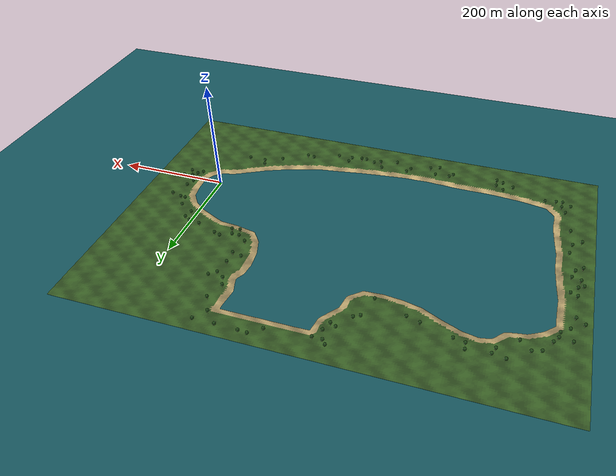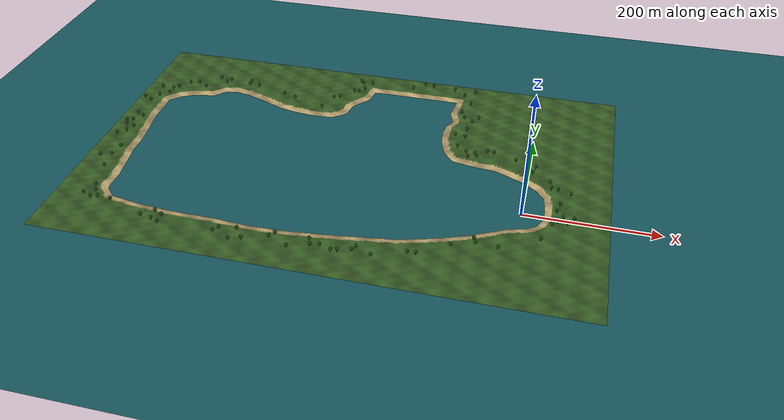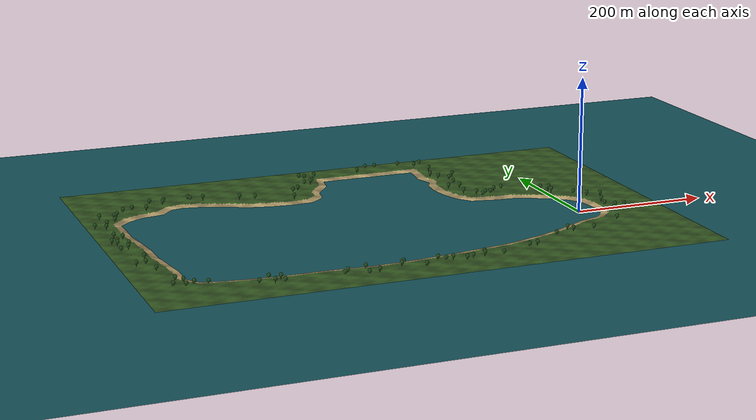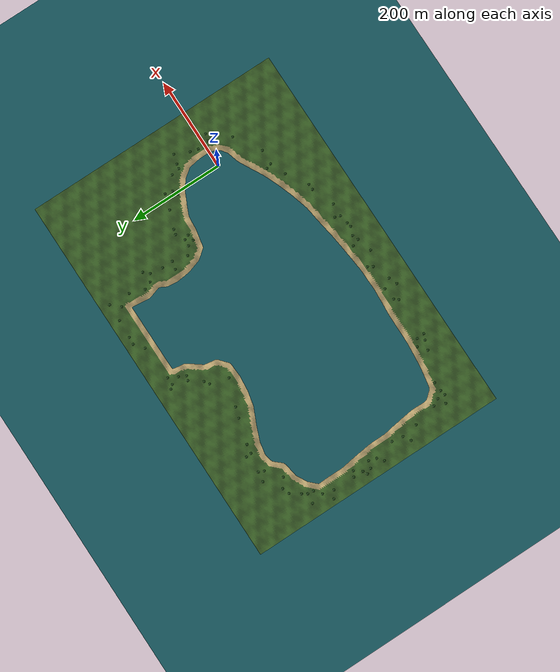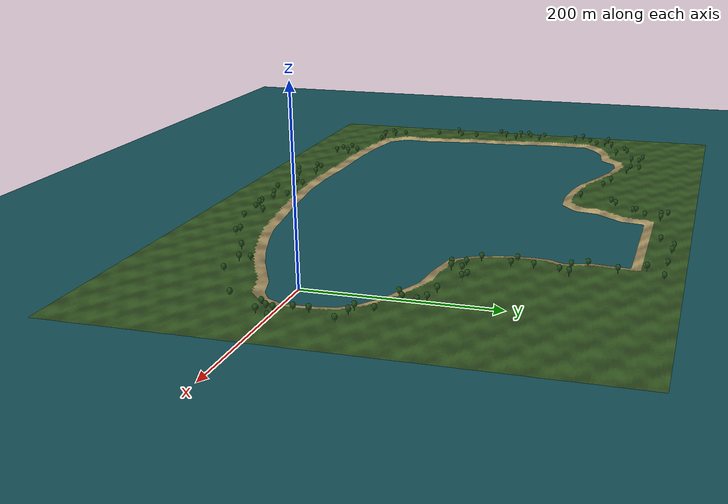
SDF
<?xml version="1.0"?>
<sdf version="1.9">
  <!-- PX4 spawns fish_usv_0 into this world at the pose set by its airframe. -->
  <world name="fish_usv">
    <physics type="ode">
      <max_step_size>0.002</max_step_size>
      <real_time_factor>1</real_time_factor>
      <real_time_update_rate>500</real_time_update_rate>
    </physics>
    <gravity>0 0 -9.81</gravity>
    <magnetic_field>6e-06 2.3e-05 -4.2e-05</magnetic_field>
    <atmosphere type="adiabatic"/>
    <plugin filename="gz-sim-physics-system" name="gz::sim::systems::Physics"/>
    <plugin filename="gz-sim-user-commands-system" name="gz::sim::systems::UserCommands"/>
    <plugin filename="gz-sim-scene-broadcaster-system" name="gz::sim::systems::SceneBroadcaster"/>
    <plugin filename="gz-sim-sensors-system" name="gz::sim::systems::Sensors">
      <render_engine>ogre2</render_engine>
    </plugin>
    <plugin filename="gz-sim-imu-system" name="gz::sim::systems::Imu"/>
    <plugin filename="gz-sim-navsat-system" name="gz::sim::systems::NavSat"/>
    <plugin filename="gz-sim-magnetometer-system" name="gz::sim::systems::Magnetometer"/>
    <plugin filename="gz-sim-air-pressure-system" name="gz::sim::systems::AirPressure"/>
    <!-- Freshwater below z=0 and air above it. The visual surface has no
         collision, allowing the vessel to float through the waterline. -->
    <plugin filename="gz-sim-buoyancy-system" name="gz::sim::systems::Buoyancy">
      <graded_buoyancy>
        <default_density>1000</default_density>
        <density_change><above_depth>0</above_depth><density>1.225</density></density_change>
      </graded_buoyancy>
      <enable>fish_usv_0</enable>
    </plugin>
    <scene>
      <grid>false</grid>
      <ambient>0.5 0.5 0.5 1</ambient>
      <background>0.5 0.7 0.9 1</background>
      <shadows>true</shadows>
    </scene>
    <light name="sun" type="directional">
      <pose>0 0 10 0 0 0</pose>
      <diffuse>1 1 1 1</diffuse>
      <specular>0.2 0.2 0.2 1</specular>
      <direction>0.2 0.2 -1</direction>
    </light>
    <!-- Georeferenced against docs/gravenbol_boundary_off.png.
         The GPS origin is the eastern beach launch area, not lake centre. -->
    <include>
      <uri>model://gravenbol</uri>
    </include>
    <spherical_coordinates>
      <surface_model>EARTH_WGS84</surface_model>
      <world_frame_orientation>ENU</world_frame_orientation>
      <latitude_deg>51.971659</latitude_deg>
      <longitude_deg>5.384925</longitude_deg>
      <elevation>0</elevation>
    </spherical_coordinates>
  </world>
</sdf>
